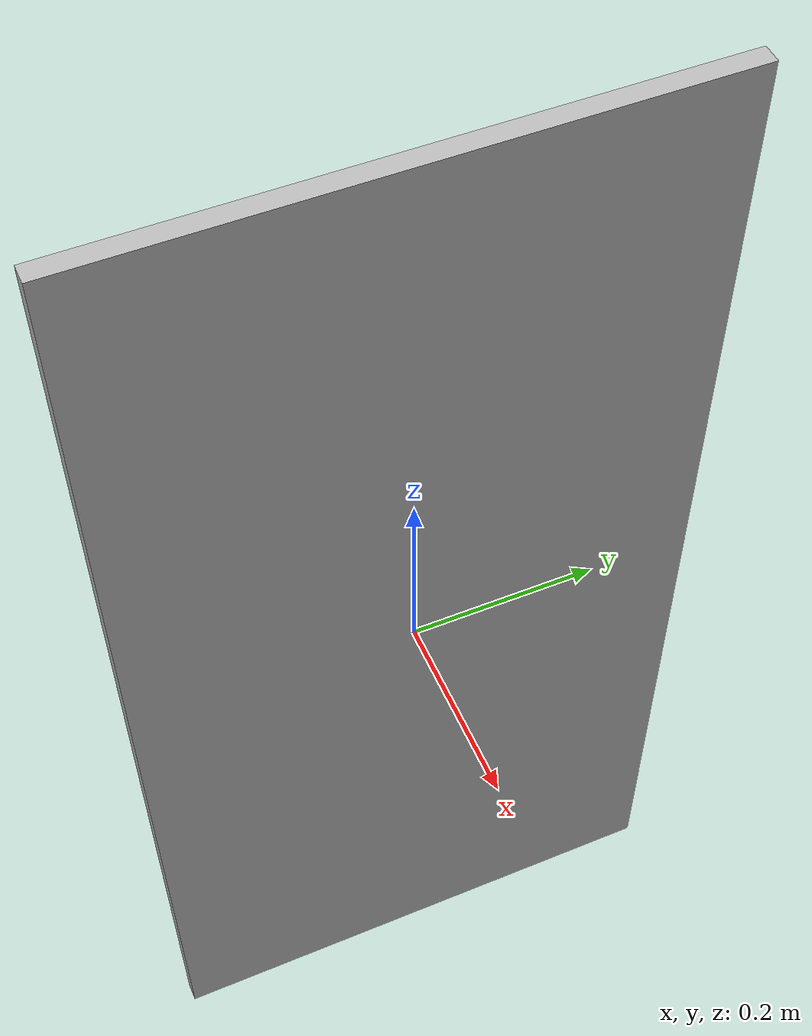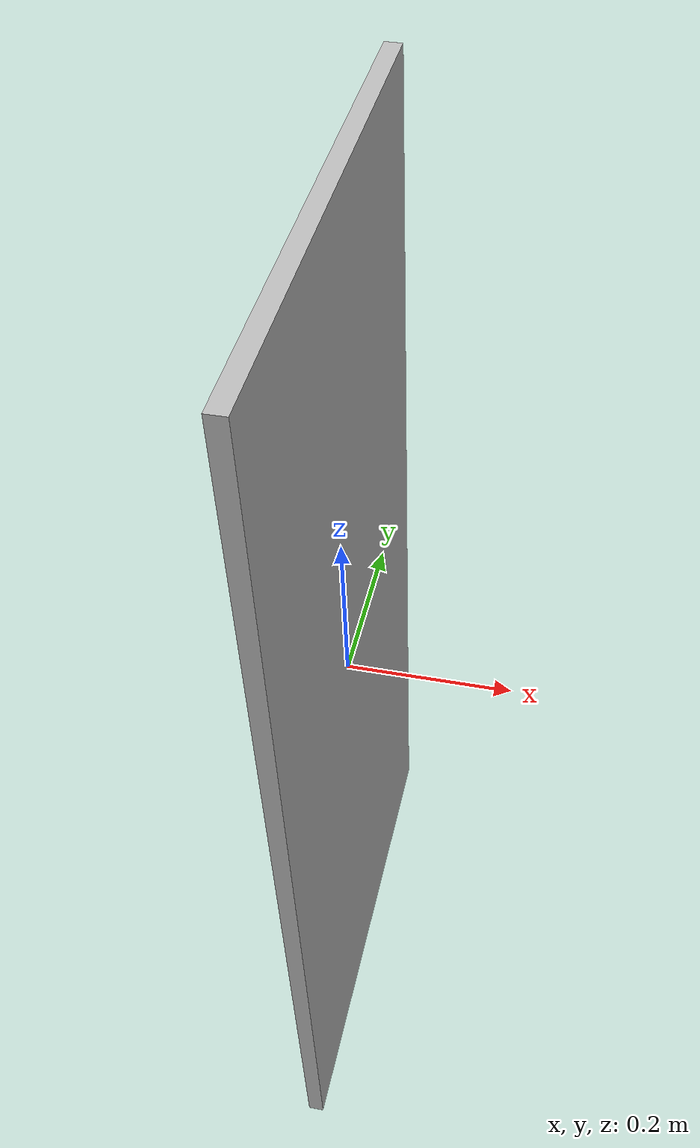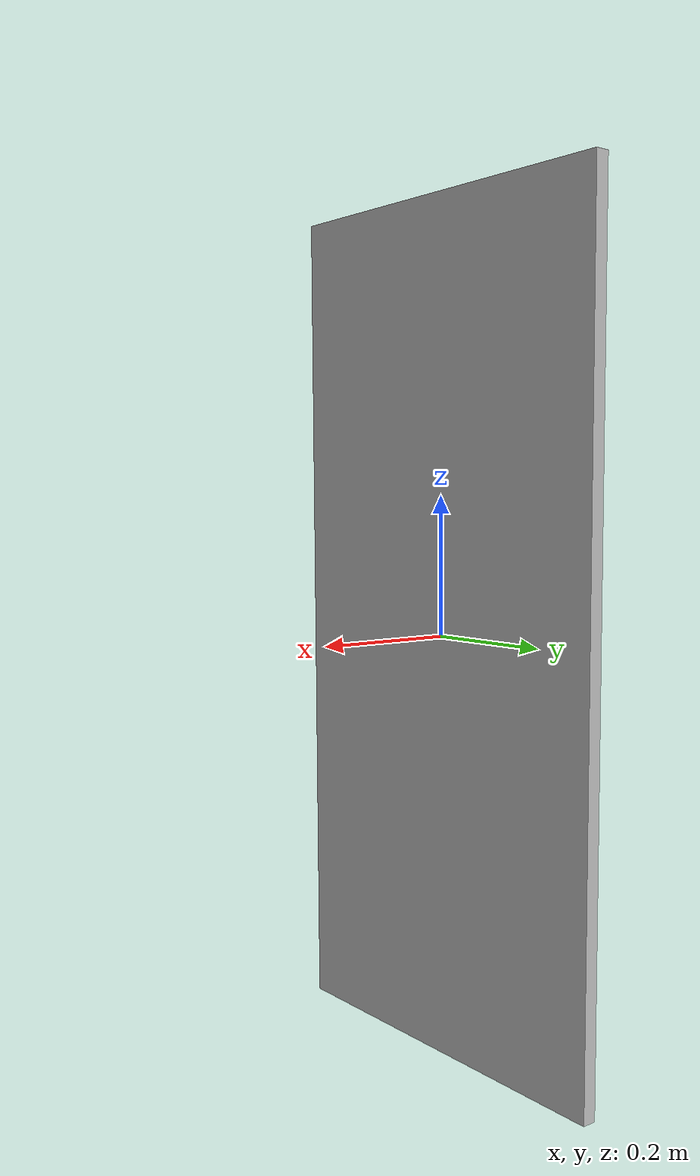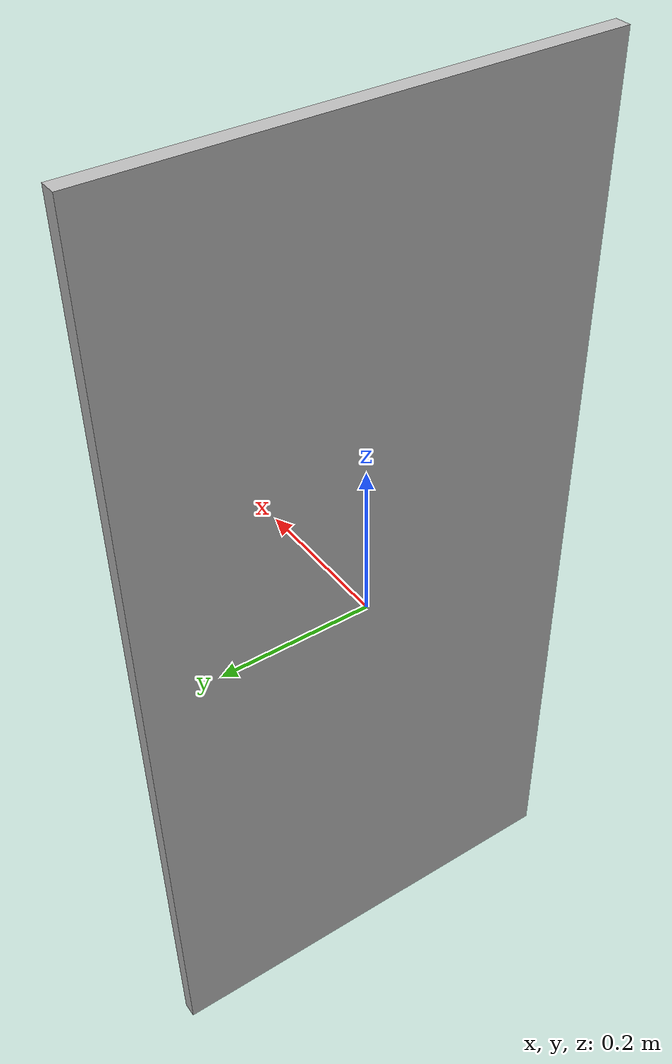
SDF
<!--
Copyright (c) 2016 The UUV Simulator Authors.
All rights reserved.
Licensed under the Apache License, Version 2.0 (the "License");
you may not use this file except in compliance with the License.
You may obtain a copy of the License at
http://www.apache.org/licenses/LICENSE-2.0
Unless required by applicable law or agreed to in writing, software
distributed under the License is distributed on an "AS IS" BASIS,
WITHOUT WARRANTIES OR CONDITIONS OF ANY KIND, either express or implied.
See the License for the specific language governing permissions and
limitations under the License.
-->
<?xml version="1.0" ?>
<sdf version="1.5">
  <model name="flat_buoy">
    <static>true</static>
    <link name="link">
      <collision name="flat_buoy">
        <pose>0 0 0 0 0 0</pose>
        <geometry>
          <mesh>
            <uri>model://flat_buoy/meshes/flat_buoy.dae</uri>
            <scale>1.0 1.0 1.0</scale>
          </mesh>
        </geometry>
      </collision>

      <visual name="flat_buoy">
        <cast_shadows>true</cast_shadows>
        <pose>0 0 0 0 0 0</pose>
        <geometry>
          <mesh>
            <uri>model://flat_buoy/meshes/flat_buoy.dae</uri>
            <scale>1.0 1.0 1.0</scale>
          </mesh>
        </geometry>
      </visual>
    </link>
  </model>
</sdf>
